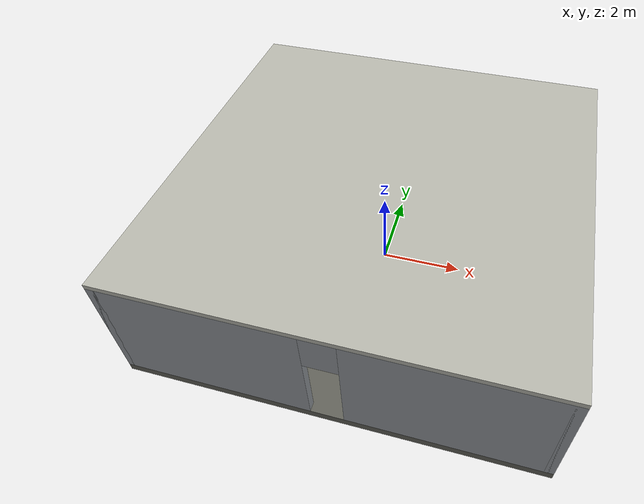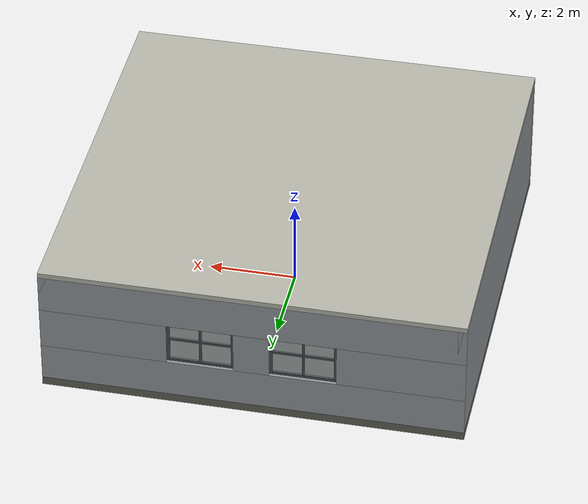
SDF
<sdf version="1.12">
 <world name="small_factory_room">
  <plugin name="gz::sim::systems::Physics" filename="gz-sim-physics-system"/>
  <plugin name="gz::sim::systems::Sensors" filename="gz-sim-sensors-system">
   <render_engine>ogre2</render_engine>
  </plugin>
  <plugin name="gz::sim::systems::SceneBroadcaster" filename="gz-sim-scene-broadcaster-system"/>
  <plugin name="gz::sim::systems::UserCommands" filename="gz-sim-user-commands-system"/>
  <gravity>0 0 -9.8100000000000005</gravity>
  <physics name="factory_physics" type="ode">
   <max_step_size>0.0040000000000000001</max_step_size>
   <real_time_factor>1</real_time_factor>
   <real_time_update_rate>250</real_time_update_rate>
  </physics>
  <scene>
   <ambient>0.300000012 0.300000012 0.300000012 1</ambient>
   <background>0.119999997 0.119999997 0.140000001 1</background>
   <grid>false</grid>
   <shadows>true</shadows>
  </scene>
  <magnetic_field>5.5644999999999998e-06 2.2875799999999999e-05 -4.2388400000000002e-05</magnetic_field>
  <atmosphere type="adiabatic"/>
  <model name="factory_floor">
   <static>true</static>
   <link name="floor_link">
    <collision name="floor_collision">
     <geometry><box><size>9.5 9.5 0.20000000000000001</size></box></geometry>
     <surface><friction><ode><mu>1.2</mu><mu2>1.2</mu2></ode></friction></surface>
    </collision>
    <visual name="floor_visual">
     <geometry><box><size>9.5 9.5 0.20000000000000001</size></box></geometry>
     <material>
      <ambient>0.239999995 0.239999995 0.219999999 1</ambient>
      <diffuse>0.379999995 0.379999995 0.349999994 1</diffuse>
      <specular>0.119999997 0.119999997 0.100000001 1</specular>
     </material>
    </visual>
    <inertial>
     <mass>1</mass>
     <inertia><ixx>1</ixx><ixy>0</ixy><ixz>0</ixz><iyy>1</iyy><iyz>0</iyz><izz>1</izz></inertia>
    </inertial>
   </link>
  </model>
  <model name="factory_ceiling">
   <static>true</static>
   <link name="ceiling_link">
    <pose>0 0 2.96 0 0 0</pose>
    <collision name="ceiling_collision"><geometry><box><size>9.5 9.5 0.12</size></box></geometry></collision>
    <visual name="ceiling_visual">
     <geometry><box><size>9.5 9.5 0.12</size></box></geometry>
     <material>
      <ambient>0.579999983 0.579999983 0.560000002 1</ambient>
      <diffuse>0.720000029 0.720000029 0.680000007 1</diffuse>
      <specular>0.0299999993 0.0299999993 0.0299999993 1</specular>
     </material>
    </visual>
    <inertial>
     <mass>1</mass>
     <inertia><ixx>1</ixx><ixy>0</ixy><ixz>0</ixz><iyy>1</iyy><iyz>0</iyz><izz>1</izz></inertia>
    </inertial>
   </link>
  </model>
  <model name="north_wall">
   <static>true</static>
   <link name="north_wall_lower_link">
    <pose>0 4.6500000000000004 0.55000000000000004 0 0 0</pose>
    <collision name="north_wall_lower_collision">
     <geometry><box><size>9.5 0.20000000000000001 0.90000000000000002</size></box></geometry>
    </collision>
    <visual name="north_wall_lower_visual">
     <geometry><box><size>9.5 0.20000000000000001 0.90000000000000002</size></box></geometry>
     <material>
      <ambient>0.419999987 0.439999998 0.460000008 1</ambient>
      <diffuse>0.579999983 0.600000024 0.620000005 1</diffuse>
      <specular>0.0399999991 0.0399999991 0.0399999991 1</specular>
     </material>
    </visual>
    <inertial>
     <mass>1</mass>
     <inertia><ixx>1</ixx><ixy>0</ixy><ixz>0</ixz><iyy>1</iyy><iyz>0</iyz><izz>1</izz></inertia>
    </inertial>
   </link>
   <link name="north_wall_upper_link">
    <pose>0 4.6500000000000004 2.4500000000000002 0 0 0</pose>
    <collision name="north_wall_upper_collision">
     <geometry><box><size>9.5 0.20000000000000001 0.90000000000000002</size></box></geometry>
    </collision>
    <visual name="north_wall_upper_visual">
     <geometry><box><size>9.5 0.20000000000000001 0.90000000000000002</size></box></geometry>
     <material>
      <ambient>0.419999987 0.439999998 0.460000008 1</ambient>
      <diffuse>0.579999983 0.600000024 0.620000005 1</diffuse>
      <specular>0.0399999991 0.0399999991 0.0399999991 1</specular>
     </material>
    </visual>
    <inertial>
     <mass>1</mass>
     <inertia><ixx>1</ixx><ixy>0</ixy><ixz>0</ixz><iyy>1</iyy><iyz>0</iyz><izz>1</izz></inertia>
    </inertial>
   </link>
   <link name="north_wall_left_pier_link">
    <pose>-3.3250000000000002 4.6500000000000004 1.5 0 0 0</pose>
    <collision name="north_wall_left_pier_collision">
     <geometry><box><size>2.8500000000000001 0.20000000000000001 1</size></box></geometry>
    </collision>
    <visual name="north_wall_left_pier_visual">
     <geometry><box><size>2.8500000000000001 0.20000000000000001 1</size></box></geometry>
     <material>
      <ambient>0.419999987 0.439999998 0.460000008 1</ambient>
      <diffuse>0.579999983 0.600000024 0.620000005 1</diffuse>
      <specular>0.0399999991 0.0399999991 0.0399999991 1</specular>
     </material>
    </visual>
    <inertial>
     <mass>1</mass>
     <inertia><ixx>1</ixx><ixy>0</ixy><ixz>0</ixz><iyy>1</iyy><iyz>0</iyz><izz>1</izz></inertia>
    </inertial>
   </link>
   <link name="north_wall_center_pier_link">
    <pose>0 4.6500000000000004 1.5 0 0 0</pose>
    <collision name="north_wall_center_pier_collision">
     <geometry><box><size>0.80000000000000004 0.20000000000000001 1</size></box></geometry>
    </collision>
    <visual name="north_wall_center_pier_visual">
     <geometry><box><size>0.80000000000000004 0.20000000000000001 1</size></box></geometry>
     <material>
      <ambient>0.419999987 0.439999998 0.460000008 1</ambient>
      <diffuse>0.579999983 0.600000024 0.620000005 1</diffuse>
      <specular>0.0399999991 0.0399999991 0.0399999991 1</specular>
     </material>
    </visual>
    <inertial>
     <mass>1</mass>
     <inertia><ixx>1</ixx><ixy>0</ixy><ixz>0</ixz><iyy>1</iyy><iyz>0</iyz><izz>1</izz></inertia>
    </inertial>
   </link>
   <link name="north_wall_right_pier_link">
    <pose>3.3250000000000002 4.6500000000000004 1.5 0 0 0</pose>
    <collision name="north_wall_right_pier_collision">
     <geometry><box><size>2.8500000000000001 0.20000000000000001 1</size></box></geometry>
    </collision>
    <visual name="north_wall_right_pier_visual">
     <geometry><box><size>2.8500000000000001 0.20000000000000001 1</size></box></geometry>
     <material>
      <ambient>0.419999987 0.439999998 0.460000008 1</ambient>
      <diffuse>0.579999983 0.600000024 0.620000005 1</diffuse>
      <specular>0.0399999991 0.0399999991 0.0399999991 1</specular>
     </material>
    </visual>
    <inertial>
     <mass>1</mass>
     <inertia><ixx>1</ixx><ixy>0</ixy><ixz>0</ixz><iyy>1</iyy><iyz>0</iyz><izz>1</izz></inertia>
    </inertial>
   </link>
   <link name="north_window_left_link">
    <pose>-1.1499999999999999 4.6500000000000004 1.5 0 0 0</pose>
    <collision name="north_window_left_glass_collision">
     <geometry><box><size>1.4199999999999999 0.029999999999999999 0.92000000000000004</size></box></geometry>
    </collision>
    <visual name="north_window_left_glass_visual">
     <geometry><box><size>1.4199999999999999 0.029999999999999999 0.92000000000000004</size></box></geometry>
     <material>
      <ambient>0.620000005 0.75 0.819999993 0.300000012</ambient>
      <diffuse>0.74000001 0.860000014 0.920000017 0.300000012</diffuse>
      <specular>0.219999999 0.219999999 0.219999999 1</specular>
     </material>
     <transparency>0.59999999999999998</transparency>
    </visual>
    <visual name="north_window_left_frame_top_visual">
     <pose>0 0 0.46999999999999997 0 0 0</pose>
     <geometry><box><size>1.5 0.059999999999999998 0.059999999999999998</size></box></geometry>
     <material>
      <ambient>0.180000007 0.200000003 0.219999999 1</ambient>
      <diffuse>0.280000001 0.300000012 0.319999993 1</diffuse>
      <specular>0.0799999982 0.0799999982 0.0799999982 1</specular>
     </material>
    </visual>
    <visual name="north_window_left_frame_bottom_visual">
     <pose>0 0 -0.46999999999999997 0 0 0</pose>
     <geometry><box><size>1.5 0.059999999999999998 0.059999999999999998</size></box></geometry>
     <material>
      <ambient>0.180000007 0.200000003 0.219999999 1</ambient>
      <diffuse>0.280000001 0.300000012 0.319999993 1</diffuse>
      <specular>0.0799999982 0.0799999982 0.0799999982 1</specular>
     </material>
    </visual>
    <visual name="north_window_left_frame_left_visual">
     <pose>-0.71999999999999997 0 0 0 0 0</pose>
     <geometry><box><size>0.059999999999999998 0.059999999999999998 1</size></box></geometry>
     <material>
      <ambient>0.180000007 0.200000003 0.219999999 1</ambient>
      <diffuse>0.280000001 0.300000012 0.319999993 1</diffuse>
      <specular>0.0799999982 0.0799999982 0.0799999982 1</specular>
     </material>
    </visual>
    <visual name="north_window_left_frame_right_visual">
     <pose>0.71999999999999997 0 0 0 0 0</pose>
     <geometry><box><size>0.059999999999999998 0.059999999999999998 1</size></box></geometry>
     <material>
      <ambient>0.180000007 0.200000003 0.219999999 1</ambient>
      <diffuse>0.280000001 0.300000012 0.319999993 1</diffuse>
      <specular>0.0799999982 0.0799999982 0.0799999982 1</specular>
     </material>
    </visual>
    <visual name="north_window_left_frame_center_visual">
     <geometry><box><size>0.050000000000000003 0.050000000000000003 0.92000000000000004</size></box></geometry>
     <material>
      <ambient>0.180000007 0.200000003 0.219999999 1</ambient>
      <diffuse>0.280000001 0.300000012 0.319999993 1</diffuse>
      <specular>0.0799999982 0.0799999982 0.0799999982 1</specular>
     </material>
    </visual>
    <visual name="north_window_left_frame_transom_visual">
     <pose>0 0 0.10000000000000001 0 0 0</pose>
     <geometry><box><size>1.4199999999999999 0.050000000000000003 0.050000000000000003</size></box></geometry>
     <material>
      <ambient>0.180000007 0.200000003 0.219999999 1</ambient>
      <diffuse>0.280000001 0.300000012 0.319999993 1</diffuse>
      <specular>0.0799999982 0.0799999982 0.0799999982 1</specular>
     </material>
    </visual>
    <inertial>
     <mass>1</mass>
     <inertia><ixx>1</ixx><ixy>0</ixy><ixz>0</ixz><iyy>1</iyy><iyz>0</iyz><izz>1</izz></inertia>
    </inertial>
   </link>
   <link name="north_window_right_link">
    <pose>1.1499999999999999 4.6500000000000004 1.5 0 0 0</pose>
    <collision name="north_window_right_glass_collision">
     <geometry><box><size>1.4199999999999999 0.029999999999999999 0.92000000000000004</size></box></geometry>
    </collision>
    <visual name="north_window_right_glass_visual">
     <geometry><box><size>1.4199999999999999 0.029999999999999999 0.92000000000000004</size></box></geometry>
     <material>
      <ambient>0.620000005 0.75 0.819999993 0.300000012</ambient>
      <diffuse>0.74000001 0.860000014 0.920000017 0.300000012</diffuse>
      <specular>0.219999999 0.219999999 0.219999999 1</specular>
     </material>
     <transparency>0.59999999999999998</transparency>
    </visual>
    <visual name="north_window_right_frame_top_visual">
     <pose>0 0 0.46999999999999997 0 0 0</pose>
     <geometry><box><size>1.5 0.059999999999999998 0.059999999999999998</size></box></geometry>
     <material>
      <ambient>0.180000007 0.200000003 0.219999999 1</ambient>
      <diffuse>0.280000001 0.300000012 0.319999993 1</diffuse>
      <specular>0.0799999982 0.0799999982 0.0799999982 1</specular>
     </material>
    </visual>
    <visual name="north_window_right_frame_bottom_visual">
     <pose>0 0 -0.46999999999999997 0 0 0</pose>
     <geometry><box><size>1.5 0.059999999999999998 0.059999999999999998</size></box></geometry>
     <material>
      <ambient>0.180000007 0.200000003 0.219999999 1</ambient>
      <diffuse>0.280000001 0.300000012 0.319999993 1</diffuse>
      <specular>0.0799999982 0.0799999982 0.0799999982 1</specular>
     </material>
    </visual>
    <visual name="north_window_right_frame_left_visual">
     <pose>-0.71999999999999997 0 0 0 0 0</pose>
     <geometry><box><size>0.059999999999999998 0.059999999999999998 1</size></box></geometry>
     <material>
      <ambient>0.180000007 0.200000003 0.219999999 1</ambient>
      <diffuse>0.280000001 0.300000012 0.319999993 1</diffuse>
      <specular>0.0799999982 0.0799999982 0.0799999982 1</specular>
     </material>
    </visual>
    <visual name="north_window_right_frame_right_visual">
     <pose>0.71999999999999997 0 0 0 0 0</pose>
     <geometry><box><size>0.059999999999999998 0.059999999999999998 1</size></box></geometry>
     <material>
      <ambient>0.180000007 0.200000003 0.219999999 1</ambient>
      <diffuse>0.280000001 0.300000012 0.319999993 1</diffuse>
      <specular>0.0799999982 0.0799999982 0.0799999982 1</specular>
     </material>
    </visual>
    <visual name="north_window_right_frame_center_visual">
     <geometry><box><size>0.050000000000000003 0.050000000000000003 0.92000000000000004</size></box></geometry>
     <material>
      <ambient>0.180000007 0.200000003 0.219999999 1</ambient>
      <diffuse>0.280000001 0.300000012 0.319999993 1</diffuse>
      <specular>0.0799999982 0.0799999982 0.0799999982 1</specular>
     </material>
    </visual>
    <visual name="north_window_right_frame_transom_visual">
     <pose>0 0 0.10000000000000001 0 0 0</pose>
     <geometry><box><size>1.4199999999999999 0.050000000000000003 0.050000000000000003</size></box></geometry>
     <material>
      <ambient>0.180000007 0.200000003 0.219999999 1</ambient>
      <diffuse>0.280000001 0.300000012 0.319999993 1</diffuse>
      <specular>0.0799999982 0.0799999982 0.0799999982 1</specular>
     </material>
    </visual>
    <inertial>
     <mass>1</mass>
     <inertia><ixx>1</ixx><ixy>0</ixy><ixz>0</ixz><iyy>1</iyy><iyz>0</iyz><izz>1</izz></inertia>
    </inertial>
   </link>
  </model>
  <model name="south_wall">
   <static>true</static>
   <link name="south_wall_left_link">
    <pose>-2.5625 -4.6500000000000004 1.5 0 0 0</pose>
    <collision name="south_wall_left_collision">
     <geometry><box><size>4.375 0.20000000000000001 2.7999999999999998</size></box></geometry>
    </collision>
    <visual name="south_wall_left_visual">
     <geometry><box><size>4.375 0.20000000000000001 2.7999999999999998</size></box></geometry>
     <material>
      <ambient>0.419999987 0.439999998 0.460000008 1</ambient>
      <diffuse>0.579999983 0.600000024 0.620000005 1</diffuse>
      <specular>0.0399999991 0.0399999991 0.0399999991 1</specular>
     </material>
    </visual>
    <inertial>
     <mass>1</mass>
     <inertia><ixx>1</ixx><ixy>0</ixy><ixz>0</ixz><iyy>1</iyy><iyz>0</iyz><izz>1</izz></inertia>
    </inertial>
   </link>
   <link name="south_wall_right_link">
    <pose>2.5625 -4.6500000000000004 1.5 0 0 0</pose>
    <collision name="south_wall_right_collision">
     <geometry><box><size>4.375 0.20000000000000001 2.7999999999999998</size></box></geometry>
    </collision>
    <visual name="south_wall_right_visual">
     <geometry><box><size>4.375 0.20000000000000001 2.7999999999999998</size></box></geometry>
     <material>
      <ambient>0.419999987 0.439999998 0.460000008 1</ambient>
      <diffuse>0.579999983 0.600000024 0.620000005 1</diffuse>
      <specular>0.0399999991 0.0399999991 0.0399999991 1</specular>
     </material>
    </visual>
    <inertial>
     <mass>1</mass>
     <inertia><ixx>1</ixx><ixy>0</ixy><ixz>0</ixz><iyy>1</iyy><iyz>0</iyz><izz>1</izz></inertia>
    </inertial>
   </link>
   <link name="south_wall_overdoor_link">
    <pose>0 -4.6500000000000004 2.4422750000000004 0 0 0</pose>
    <collision name="south_wall_overdoor_collision">
     <geometry><box><size>0.90000000000000002 0.20000000000000001 0.91544999999999999</size></box></geometry>
    </collision>
    <visual name="south_wall_overdoor_visual">
     <geometry><box><size>0.90000000000000002 0.20000000000000001 0.91544999999999999</size></box></geometry>
     <material>
      <ambient>0.419999987 0.439999998 0.460000008 1</ambient>
      <diffuse>0.579999983 0.600000024 0.620000005 1</diffuse>
      <specular>0.0399999991 0.0399999991 0.0399999991 1</specular>
     </material>
    </visual>
    <inertial>
     <mass>1</mass>
     <inertia><ixx>1</ixx><ixy>0</ixy><ixz>0</ixz><iyy>1</iyy><iyz>0</iyz><izz>1</izz></inertia>
    </inertial>
   </link>
  </model>
  <model name="east_wall">
   <static>true</static>
   <link name="east_wall_link">
    <pose>4.6500000000000004 0 1.5 0 0 1.5708</pose>
    <collision name="east_wall_collision">
     <geometry><box><size>9.5 0.20000000000000001 2.7999999999999998</size></box></geometry>
    </collision>
    <visual name="east_wall_visual">
     <geometry><box><size>9.5 0.20000000000000001 2.7999999999999998</size></box></geometry>
     <material>
      <ambient>0.419999987 0.439999998 0.460000008 1</ambient>
      <diffuse>0.579999983 0.600000024 0.620000005 1</diffuse>
      <specular>0.0399999991 0.0399999991 0.0399999991 1</specular>
     </material>
    </visual>
    <inertial>
     <mass>1</mass>
     <inertia><ixx>1</ixx><ixy>0</ixy><ixz>0</ixz><iyy>1</iyy><iyz>0</iyz><izz>1</izz></inertia>
    </inertial>
   </link>
   <pose>0 -4.5363712786183867e-14 -6.6613381477509392e-16 0 0 9.8809849191638932e-15</pose>
  </model>
  <model name="west_wall">
   <static>true</static>
   <link name="west_wall_link">
    <pose>-4.6500000000000004 0 1.5 0 0 1.5708</pose>
    <collision name="west_wall_collision">
     <geometry><box><size>9.5 0.20000000000000001 2.7999999999999998</size></box></geometry>
    </collision>
    <visual name="west_wall_visual">
     <geometry><box><size>9.5 0.20000000000000001 2.7999999999999998</size></box></geometry>
     <material>
      <ambient>0.419999987 0.439999998 0.460000008 1</ambient>
      <diffuse>0.579999983 0.600000024 0.620000005 1</diffuse>
      <specular>0.0399999991 0.0399999991 0.0399999991 1</specular>
     </material>
    </visual>
    <inertial>
     <mass>1</mass>
     <inertia><ixx>1</ixx><ixy>0</ixy><ixz>0</ixz><iyy>1</iyy><iyz>0</iyz><izz>1</izz></inertia>
    </inertial>
   </link>
   <pose>0 4.5363712786183867e-14 -6.6613381477509392e-16 0 0 9.8809849191638932e-15</pose>
  </model>
  <model name="lamp_fixture_01">
   <static>true</static>
   <link name="lamp_fixture_01_link">
    <pose>-2.5 0 2.8599999999999999 0 0 0</pose>
    <visual name="lamp_fixture_01_housing">
     <geometry><box><size>1.2 0.34999999999999998 0.080000000000000002</size></box></geometry>
     <material>
      <ambient>0.180000007 0.180000007 0.180000007 1</ambient>
      <diffuse>0.280000001 0.280000001 0.280000001 1</diffuse>
      <specular>0.0799999982 0.0799999982 0.0799999982 1</specular>
     </material>
    </visual>
    <visual name="lamp_fixture_01_diffuser">
     <pose>0 0 -0.040000000000000001 0 0 0</pose>
     <geometry><box><size>1.0800000000000001 0.23999999999999999 0.029999999999999999</size></box></geometry>
     <material>
      <ambient>0.920000017 0.920000017 0.860000014 1</ambient>
      <diffuse>0.980000019 0.980000019 0.899999976 1</diffuse>
      <specular>0.140000001 0.140000001 0.140000001 1</specular>
      <emissive>0.150000006 0.150000006 0.119999997 1</emissive>
     </material>
    </visual>
    <inertial>
     <mass>1</mass>
     <inertia><ixx>1</ixx><ixy>0</ixy><ixz>0</ixz><iyy>1</iyy><iyz>0</iyz><izz>1</izz></inertia>
    </inertial>
   </link>
  </model>
  <model name="lamp_fixture_02">
   <static>true</static>
   <link name="lamp_fixture_02_link">
    <pose>2.5 0 2.8599999999999999 0 0 0</pose>
    <visual name="lamp_fixture_02_housing">
     <geometry><box><size>1.2 0.34999999999999998 0.080000000000000002</size></box></geometry>
     <material>
      <ambient>0.180000007 0.180000007 0.180000007 1</ambient>
      <diffuse>0.280000001 0.280000001 0.280000001 1</diffuse>
      <specular>0.0799999982 0.0799999982 0.0799999982 1</specular>
     </material>
    </visual>
    <visual name="lamp_fixture_02_diffuser">
     <pose>0 0 -0.040000000000000001 0 0 0</pose>
     <geometry><box><size>1.0800000000000001 0.23999999999999999 0.029999999999999999</size></box></geometry>
     <material>
      <ambient>0.920000017 0.920000017 0.860000014 1</ambient>
      <diffuse>0.980000019 0.980000019 0.899999976 1</diffuse>
      <specular>0.140000001 0.140000001 0.140000001 1</specular>
      <emissive>0.150000006 0.150000006 0.119999997 1</emissive>
     </material>
    </visual>
    <inertial>
     <mass>1</mass>
     <inertia><ixx>1</ixx><ixy>0</ixy><ixz>0</ixz><iyy>1</iyy><iyz>0</iyz><izz>1</izz></inertia>
    </inertial>
   </link>
  </model>
  <joint name="ur5_rg2_world_joint" type="fixed"><parent>world</parent><child>ur5_rg2::base_link</child></joint>
  <light name="factory_main_light" type="directional">
   <pose>0 0 8 0 0 0</pose>
   <intensity>1</intensity>
   <direction>-0.10000000000000001 0.10000000000000001 -1</direction>
   <diffuse>0.75 0.75 0.720000029 1</diffuse>
   <specular>0.200000003 0.200000003 0.200000003 1</specular>
   <attenuation>
    <range>100</range>
    <linear>0.0099999997764825821</linear>
    <constant>0.89999997615814209</constant>
    <quadratic>0.0010000000474974513</quadratic>
   </attenuation>
   <spot><inner_angle>0</inner_angle><outer_angle>0</outer_angle><falloff>0</falloff></spot>
  </light>
  <light name="ceiling_light_01" type="point">
   <pose>-2.5 0 2.7999999999999998 0 0 0</pose>
   <cast_shadows>false</cast_shadows>
   <intensity>1</intensity>
   <direction>0 0 -1</direction>
   <diffuse>0.899999976 0.899999976 0.879999995 1</diffuse>
   <specular>0.100000001 0.100000001 0.100000001 1</specular>
   <attenuation>
    <range>12</range>
    <linear>0.029999999329447746</linear>
    <constant>0.5</constant>
    <quadratic>0.0020000000949949026</quadratic>
   </attenuation>
   <spot><inner_angle>0</inner_angle><outer_angle>0</outer_angle><falloff>0</falloff></spot>
  </light>
  <light name="ceiling_light_02" type="point">
   <pose>2.5 0 2.7999999999999998 0 0 0</pose>
   <cast_shadows>false</cast_shadows>
   <intensity>1</intensity>
   <direction>0 0 -1</direction>
   <diffuse>0.899999976 0.899999976 0.879999995 1</diffuse>
   <specular>0.100000001 0.100000001 0.100000001 1</specular>
   <attenuation>
    <range>12</range>
    <linear>0.029999999329447746</linear>
    <constant>0.5</constant>
    <quadratic>0.0020000000949949026</quadratic>
   </attenuation>
   <spot><inner_angle>0</inner_angle><outer_angle>0</outer_angle><falloff>0</falloff></spot>
  </light>
 </world>
</sdf>
